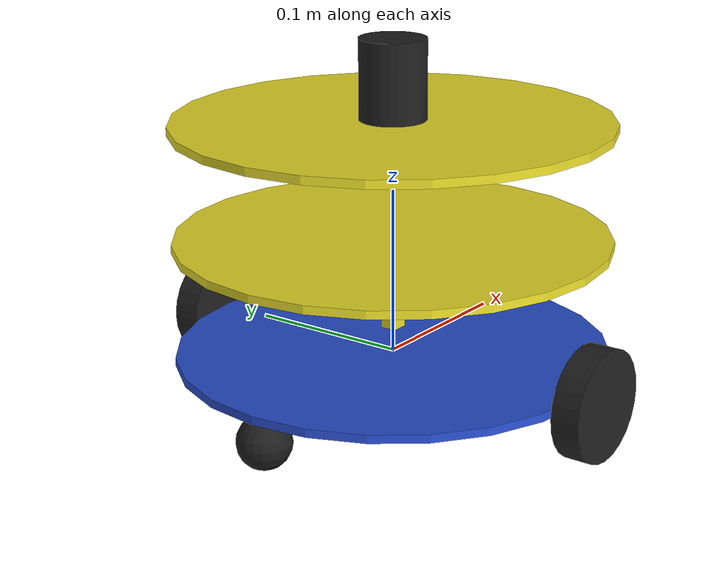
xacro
<?xml version="1.0" encoding="utf-8"?>

<robot name="robot" xmlns:xacro="http://www.ros.org/wiki/xacro">

    <xacro:arg name="tf_odom_enabled" default="true" />
    <xacro:arg name="ns" default="" />

    <!-- Include -->

    <xacro:include filename="material.xacro" />
    <xacro:include filename="property.xacro" />
    <xacro:include filename="inertia.xacro" />
    <xacro:include filename="wheel.xacro" />
    <xacro:include filename="caster.xacro" />
    <xacro:include filename="plate.xacro" />
    <xacro:include filename="../accessory/lidar.xacro" />
    <xacro:include filename="../accessory/imu.xacro" />

    <!-- Body of robot, with plates, standoffs and Create -->
    <!-- BASE-LINK -->
    <link name="$(arg ns)/base_link">
        <visual>
            <origin xyz="0 0 0" rpy="0 0 0" />
            <geometry>
                <cylinder length="${base_link_length}" radius="${base_link_radius}"/>
            </geometry>
        </visual>
        <collision>
            <origin xyz="0 0 0" rpy="0 0 0" />
            <geometry>
                <cylinder length="${base_link_length}" radius="${base_link_radius}"/>
            </geometry>
        </collision>
        <!-- warning: KDL does not support a root link with an inertia. -->
        <inertial>
            <mass value="5.0"/>
            <origin xyz="0 0 0" rpy="0 0 0" />
            <inertia ixx="1" ixy="0" ixz="0" iyy="1" iyz="0" izz="1"/>
        </inertial>
    </link>

    <gazebo reference="$(arg ns)/base_link">
        <material>Gazebo/Blue</material>
    </gazebo>

    <!-- Wheel Definitions -->
    <xacro:wheel lr="right" translateY="-1" parent="$(arg ns)/base_link" ns="$(arg ns)" />
    <xacro:wheel lr="left" translateY="1" parent="$(arg ns)/base_link" ns="$(arg ns)" />

    <!-- Casters Definitions -->
    <xacro:caster fb="front"  translateX="1" parent="$(arg ns)/base_link" ns="$(arg ns)" />
    <xacro:caster fb="back"  translateX="-1" parent="$(arg ns)/base_link" ns="$(arg ns)" />

    <!-- plate Definitions -->
    <xacro:plate num="1" parent="$(arg ns)/base_link" ns="$(arg ns)" />
    <xacro:plate num="2" parent="$(arg ns)/plate_1_link" ns="$(arg ns)" />

    <!-- Attach the lidar -->
    <joint name="$(arg ns)/lidar_joint" type="fixed">
        <origin xyz="0 0 0.025" rpy="0 0 0" />
        <parent link="$(arg ns)/plate_2_link" />
        <child link="$(arg ns)/lidar_link" />
    </joint>

    <xacro:lidar ns="$(arg ns)" />

    <!-- Attach the IMU -->
    <joint name="$(arg ns)/imu_joint" type="fixed">
        <origin xyz="0 0 0.02" rpy="0 0 0" />
        <parent link="$(arg ns)/base_link" />
        <child link="$(arg ns)/imu_link" />
    </joint>

    <xacro:imu ns="$(arg ns)" />

    <!-- Attach the Camera -->

    <!-- # joint state -->
    <gazebo>
        <plugin name="joint_state_publisher" filename="libgazebo_ros_joint_state_publisher.so">
            <ros>
                <namespace>$(arg ns)</namespace>
                <remapping>~/out:=$(arg ns)/joint_states</remapping>
            </ros>
            <update_rate>30</update_rate>
            <joint_name>$(arg ns)/wheel_left_joint</joint_name>
            <joint_name>$(arg ns)/wheel_right_joint</joint_name>
        </plugin>
    </gazebo>

    <!-- # differential drive -->
    <gazebo>
        <plugin name='differential_drive_controller' filename='libgazebo_ros_diff_drive.so'>

            <ros>
                <namespace>$(arg ns)</namespace>
            </ros>

            <!-- wheels -->
            <left_joint>$(arg ns)/wheel_left_joint</left_joint>
            <right_joint>$(arg ns)/wheel_right_joint</right_joint>

            <!-- kinematics -->
            <wheel_separation>${base_link_radius*2}</wheel_separation>
            <wheel_diameter>${2*wheel_radius}</wheel_diameter>

            <!-- limits -->
            <max_wheel_torque>30</max_wheel_torque>
            <max_wheel_acceleration>1.8</max_wheel_acceleration>

            <!-- output -->
            <publish_odom>true</publish_odom>
            <publish_odom_tf>true</publish_odom_tf>
            <publish_wheel_tf>true</publish_wheel_tf>

            <odometry_frame>$(arg ns)/odom</odometry_frame>
            <robot_base_frame>$(arg ns)/base_link</robot_base_frame>

        </plugin>
    </gazebo>

</robot>

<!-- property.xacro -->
<robot xmlns:xacro="http://www.ros.org/wiki/xacro">

    <!--All units in m-kg-s-radians unit system -->
    <xacro:property name="M_PI" value="3.1415926535897931" />

    <!-- Main body length, width, height and mass -->
    <xacro:property name="base_mass"        value="5.0" />
    <xacro:property name="base_link_radius" value="0.13"/>
    <xacro:property name="base_link_length" value="0.005"/>

    <xacro:property name="motor_x" value="0.0"/>

    <!-- Wheel radius, height and mass -->
    <xacro:property name="wheel_radius" value="0.033" />
    <xacro:property name="wheel_height" value="0.017" />
    <xacro:property name="wheel_mass"   value="1.0" />

    <!-- Caster radius and mass -->
    <xacro:property name="caster_radius"          value="0.016" />
    <xacro:property name="caster_mass"            value="1.0" />
    <xacro:property name="caster_joint_origin_x"  value="0.12" />

    <!-- plate height and mass -->
    <xacro:property name="plate_mass"   value="0.05"/>
    <xacro:property name="plate_height" value="0.07"/>
    <xacro:property name="standoff_x"   value="0.12"/>
    <xacro:property name="standoff_y"   value="0.10"/>

</robot>

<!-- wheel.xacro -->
<robot xmlns:xacro="http://www.ros.org/wiki/xacro">
    <!-- Macro for wheel joint -->
    <xacro:macro name="wheel" params="lr translateY parent ns">
        <!-- lr: left, right -->
        <joint name="$(arg ns)/wheel_${lr}_joint" type="continuous">
            <parent link="${parent}"/>
            <child link="$(arg ns)/wheel_${lr}_link"/>
            <origin xyz="${motor_x} ${translateY * (base_link_radius + wheel_height/2)} 0" rpy="0 0 0" />
            <axis xyz="0 1 0" rpy="0 0 0" />
        </joint>

        <link name="$(arg ns)/wheel_${lr}_link">
            <visual>
                <origin xyz="0 0 0" rpy="${M_PI/2} 0  0 " />
                <geometry>
                    <cylinder length="${wheel_height}" radius="${wheel_radius}" />
                </geometry>
                <material name="Black" />
            </visual>
            <collision>
                <origin xyz="0 0 0" rpy="${M_PI/2} 0 0 " />
                <geometry>
                    <cylinder length="${wheel_height}" radius="${wheel_radius}" />
                </geometry>
            </collision>
            <xacro:cylinder_inertial_matrix  m="${wheel_mass}" r="${wheel_radius}" h="${wheel_height}" />
        </link>

        <gazebo reference="$(arg ns)/wheel_${lr}_link">
            <material>Gazebo/Black</material>
            <mu1>5.0</mu1>
            <mu2>5.0</mu2>
            <kp>10000.0</kp>
            <kd>10.0</kd>
            <minDepth>0.0</minDepth>
            <maxVel>5</maxVel>
            <fdir1>0 0 0</fdir1>
        </gazebo>
    </xacro:macro>
</robot>

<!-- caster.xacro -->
<robot xmlns:xacro="http://www.ros.org/wiki/xacro">

    <!-- Macro for caster joint -->
    <xacro:macro name="caster" params="fb translateX parent ns">
        <!-- fb: front, back -->
        <joint name="base_to_${fb}_caster_joint" type="fixed">
            <origin xyz="${translateX*caster_joint_origin_x} 0 ${-caster_radius}" rpy="0 0 0"/>
            <parent link="${parent}"/>
            <child link="$(arg ns)/${fb}_caster_link"/>
        </joint>

        <link name="$(arg ns)/${fb}_caster_link">
            <visual>
                <origin xyz="0 0 0 " rpy="0 0 0" />
                <geometry>
                    <sphere radius="${caster_radius}" />
                </geometry>
                <material name="Black" />
            </visual>
            <collision>
                <geometry>
                    <sphere radius="${caster_radius}" />
                </geometry>
                <origin xyz="0 0 0 " rpy="0 0 0" />
            </collision>
            <xacro:sphere_inertial_matrix  m="${caster_mass}" r="${caster_radius}" />
        </link>

        <gazebo reference="${fb}_caster_link">
            <material>Gazebo/Gray</material>
        </gazebo>

    </xacro:macro>
</robot>

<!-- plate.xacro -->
<robot xmlns:xacro="http://www.ros.org/wiki/xacro">

    <!-- Macro for plate joint -->
    <xacro:macro name="plate" params="num parent ns">
        <joint name="$(arg ns)/plate_${num}_joint" type="fixed">
            <origin xyz="0 0 ${plate_height}" rpy="0 0 0" />
            <parent link="${parent}"/>
            <child link="$(arg ns)/plate_${num}_link" />
        </joint>

        <link name="$(arg ns)/plate_${num}_link">
            <xacro:cylinder_inertial_matrix  m="${plate_mass}" r="${base_link_radius}" h="${base_link_length}" />
            <visual>
                <origin xyz=" 0 0 0 " rpy="0 0 0" />
                <geometry>
                    <cylinder length="${base_link_length}" radius="${base_link_radius}"/>
                </geometry>
                <material name="yellow"/>
            </visual>

            <collision>
                <origin xyz="0.0 0.0 0.0" rpy="0 0 0" />
                <geometry>
                    <cylinder length="${base_link_length}" radius="${base_link_radius}"/>
                </geometry>
            </collision>
        </link>

        <gazebo reference="$(arg ns)/plate_${num}_link">
            <material>Gazebo/Blue</material>
        </gazebo>
    </xacro:macro>

</robot>

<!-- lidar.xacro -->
<robot xmlns:xacro="http://www.ros.org/wiki/xacro" name="laser">

    <xacro:macro name="lidar" params="ns">
        <link name="$(arg ns)/lidar_link">
            <inertial>
                <mass value="0.1" />
                <origin xyz="0 0 0" />
                <inertia ixx="0.01" ixy="0.0" ixz="0.0" iyy="0.01" iyz="0.0" izz="0.01" />
            </inertial>
            <visual>
                <origin xyz="0 0 0" rpy="0 0 0" />
                <geometry>
                    <cylinder length="0.05" radius="0.02"/>
                </geometry>
            </visual>
        </link>

        <gazebo reference="$(arg ns)/lidar_link">
            <material>Gazebo/Black</material>
        </gazebo>

        <gazebo reference="$(arg ns)/lidar_link">
            <sensor name="$(arg ns)/lidar_link" type="ray">
                <always_on>true</always_on>
                <visualize>false</visualize>
                <pose>0.0 0 0 0 0 0</pose>
                <update_rate>5</update_rate>
                <ray>
                    <scan>
                        <horizontal>
                            <samples>270</samples>
                            <resolution>1.000000</resolution>
                            <min_angle>-2.356125</min_angle>
                            <max_angle>2.356125</max_angle>
                        </horizontal>
                    </scan>
                    <range>
                        <min>0.120000</min>
                        <max>6.0</max>
                        <resolution>0.01</resolution>
                    </range>
                    <noise>
                        <type>gaussian</type>
                        <mean>0.0</mean>
                        <stddev>0.01</stddev>
                    </noise>
                </ray>
                <plugin name="gazebo_lidar" filename="libgazebo_ros_ray_sensor.so">
                    <output_type>sensor_msgs/LaserScan</output_type>

                    <!-- use /lidar_link for frame_name will have error -->
                    <xacro:if value="${ns == ''}">
                        <frame_name>lidar_link</frame_name>
                    </xacro:if>
                    <xacro:unless value="${ns == ''}">
                        <frame_name>$(arg ns)/lidar_link</frame_name>
                    </xacro:unless>

                    <ros>
                        <namespace>$(arg ns)</namespace>
                        <remapping>~/out:=scan</remapping>
                    </ros>
                </plugin>
            </sensor>
        </gazebo>

    </xacro:macro>
</robot>

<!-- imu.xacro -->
<robot xmlns:xacro="http://www.ros.org/wiki/xacro">

    <xacro:macro name="imu" params="ns">
        <link name="$(arg ns)/imu_link">
            <inertial>
                <mass value="1e-5" />
                <origin xyz="0 0 0" rpy="0 0 0" />
                <inertia ixx="1e-6" ixy="0" ixz="0" iyy="1e-6" iyz="0" izz="1e-6" />
            </inertial>
            <visual>
                <origin xyz="0 0 0" rpy="0 0 0" />
                <geometry>
                    <box size="0.01 0.01 0.01" />
                </geometry>
            </visual>
        </link>

        <gazebo reference="$(arg ns)/imu_link">
            <material>Gazebo/Yellow</material>
        </gazebo>

        <gazebo reference="$(arg ns)/imu_link">
            <gravity>true</gravity>
            <sensor name="$(arg ns)/imu_sensor" type="imu">
                <always_on>true</always_on>
                <update_rate>100</update_rate>
                <visualize>true</visualize>
                <topic>__default_topic__</topic>
                <plugin filename="libgazebo_ros_imu_sensor.so" name="gazebo_imu">
                    <ros>
                        <namespace>$(arg ns)</namespace>
                        <remapping>~/out:=imu</remapping>
                    </ros>
                    <output_type>sensor_msgs/msg/Imu</output_type>
                    <body_name>$(arg ns)/imu_link</body_name>
                    <update_rate_hz>10.0</update_rate_hz>
                    <gaussian_noise>0.0</gaussian_noise>
                    <xyz_offset>0 0 0</xyz_offset>
                    <rpy_offset>0 0 0</rpy_offset>
                    <frame_name>$(arg ns)/imu_link</frame_name>
                </plugin>
                <pose>0 0 0 0 0 0</pose>
            </sensor>
        </gazebo>
    </xacro:macro>

</robot>
